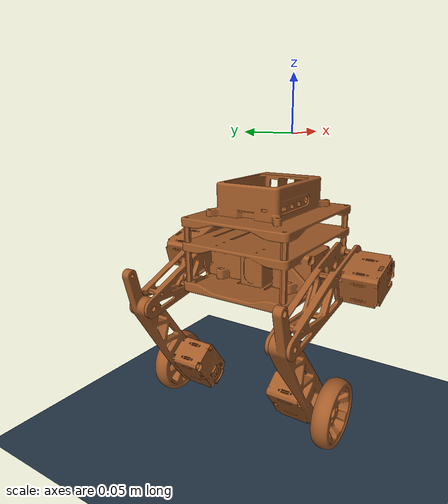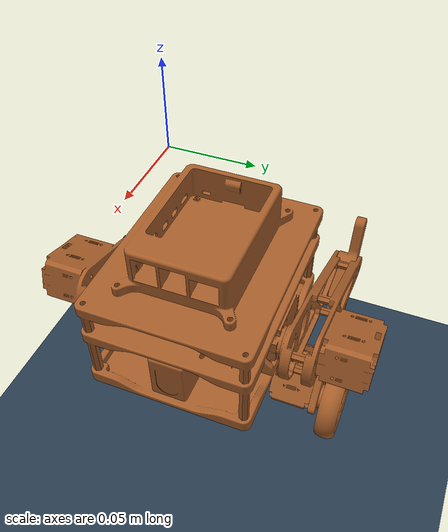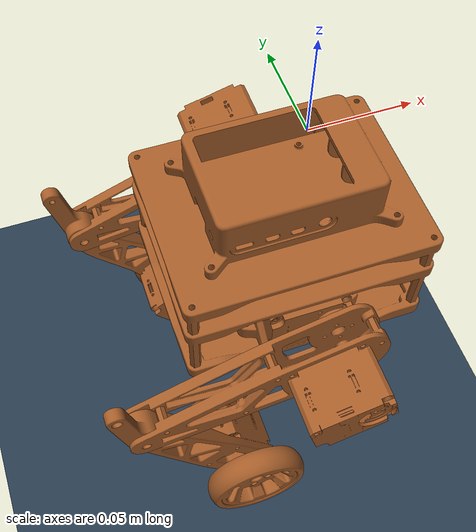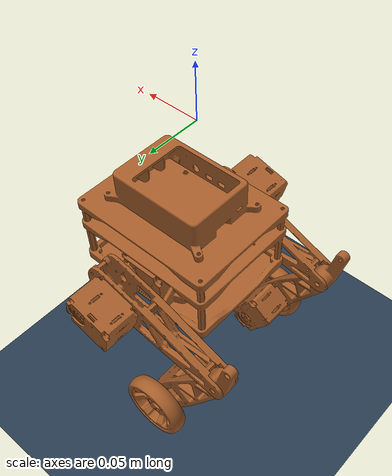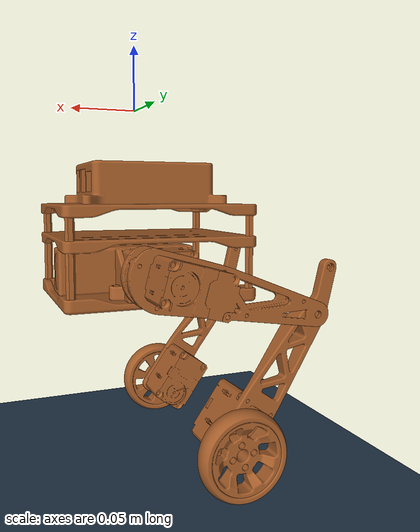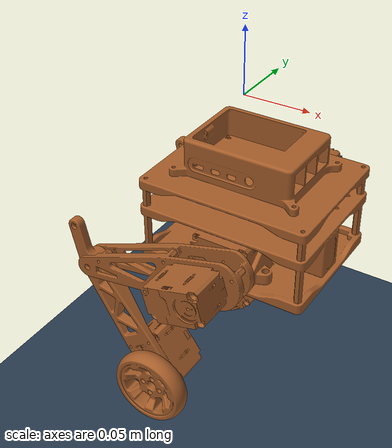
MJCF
<mujoco model="Humanoid">

    <compiler inertiafromgeom="true" angle="degree"/>

    <default>
        <joint limited="true" damping="1" armature="0"/>
        <geom condim="1" material="matgeom"/>
    </default>

    <option timestep="0.005" iterations="50" tolerance="1e-10" solver="Newton" jacobian="dense" cone="pyramidal" gravity="0 0 -9.81"/>

    <size nconmax="50" njmax="200" nstack="10000"/>

    <visual>
        <map force="0.1" zfar="30"/>
        <rgba haze="0.15 0.25 0.35 1"/>
        <quality shadowsize="2048"/>
        <global offwidth="800" offheight="800"/>
    </visual>

    <asset>
        <texture type="skybox" builtin="gradient" rgb1="0.3 0.5 0.7" rgb2="0 0 0" width="512" height="512"/>
        <texture name="texplane" type="2d" builtin="checker" rgb1=".2 .3 .4" rgb2=".1 0.15 0.2" width="512" height="512" mark="cross" markrgb=".8 .8 .8"/>
        <texture name="texgeom" type="cube" builtin="flat" mark="cross" width="127" height="1278" rgb1="0.8 0.6 0.4" rgb2="0.8 0.6 0.4" markrgb="1 1 1" random="0.01"/>
        <material name="matplane" reflectance="0.3" texture="texplane" texrepeat="1 1" texuniform="true"/>
        <material name="matgeom" texture="texgeom" texuniform="true" rgba="0.8 0.6 .4 1"/>
        <mesh name="base_link" file="base_link.stl" scale="0.001 0.001 0.001"/>
        <mesh name="upperleg_right_1" file="upperleg_right_1.stl" scale="0.001 0.001 0.001"/>
        <mesh name="upperleg_left_1" file="upperleg_left_1.stl" scale="0.001 0.001 0.001"/>
        <mesh name="wheel_right_1" file="wheel_right_1.stl" scale="0.001 0.001 0.001"/>
        <mesh name="wheel_left_1" file="wheel_left_1.stl" scale="0.001 0.001 0.001"/>
        <mesh name="lowerleg_right_1" file="lowerleg_right_1.stl" scale="0.001 0.001 0.001"/>
        <mesh name="lowerleg_left_1" file="lowerleg_left_1.stl" scale="0.001 0.001 0.001"/>
    </asset>

    <worldbody>
        <geom name="floor" pos="0 0 -0.285" size="0 0 .25" type="plane" material="matplane" condim="3" contype="1" conaffinity="1"/>
        <light directional="false" diffuse=".2 .2 .2" specular="0 0 0" pos="0 0 5" dir="0 0 -1" castshadow="false"/>
        <light mode="targetbodycom" target="robot" directional="false" diffuse=".8 .8 .8" specular="0.3 0.3 0.3" pos="0 0 4.0" dir="0 0 -1"/>

        <body name="robot" pos="0 0 -0.1">
            <joint type="free"/>
            <body name="base_link" pos="0 0 0">
                <inertial pos="0.00300424 0.0206516 -0.0103763" quat="0.00402797 0.727055 -0.0140978 0.686423" mass="0.453764" diaginertia="0.000951718 0.000826025 0.000742257"/>

                <geom type="mesh" contype="1" conaffinity="1" group="1" mesh="base_link"/>
                <geom type="mesh" mesh="base_link"/>
                <site name="imu_site" pos="0 0 0"/>

                <body name="upperleg_right_1" pos="0.0125 -0.036656 -0.018805" quat="0.793657 0 0.608366 0">
                    <inertial pos="0.000384889 -0.0301356 -0.022778" quat="0.993878 0.109614 0.00866327 -0.0107922" mass="0.0717161" diaginertia="8.80196e-05 7.86773e-05 2.23031e-05"/>
                    <joint name="hip_joint_right" pos="0 0 0" axis="0 -1 0" range="-1 1"/>
                    <geom pos="-0.0125 0.036656 0.018805" type="mesh" contype="1" conaffinity="1" group="1" mesh="upperleg_right_1"/>
                    <geom pos="-0.0125 0.036656 0.018805" type="mesh" mesh="upperleg_right_1"/>
                    <body name="lowerleg_right_1" pos="0 -0.0211 -0.12" quat="0.57393 0 -0.818905 0">
                        <inertial pos="0.000147576 0.0163926 -0.0779098" quat="0.996559 0.073541 0.00782051 -0.0374159" mass="0.0680079" diaginertia="0.000109021 0.000107072 1.09068e-05"/>
                        <joint name="knee_joint_right" pos="0 0 0" axis="0 -1 0" range="-1 1"/>
                        <geom pos="-0.0125 0.057756 0.138805" type="mesh" contype="1" conaffinity="1" group="1" mesh="lowerleg_right_1"/>
                        <geom pos="-0.0125 0.057756 0.138805" type="mesh" mesh="lowerleg_right_1"/>
                        <body name="wheel_right_1" pos="0 0.0037 -0.11">
                            <inertial pos="-1.36492e-10 -0.0138548 1.53838e-07" quat="0.707107 0 0 0.707107" mass="0.01" diaginertia="0.00014 7.5e-05 7.5e-05"/>
                            <joint name="wheel_joint_right" pos="0 0 0" axis="0 -1 0" range="-180 180" type="hinge"/>
                            <geom pos="-0.0125 0.054056 0.248805" type="mesh" contype="1" conaffinity="1" group="1" mesh="wheel_right_1"/>
                            <geom pos="-0.0125 0.054056 0.248805" type="mesh" mesh="wheel_right_1"/>
                        </body>
                    </body>
                </body>
                <body name="upperleg_left_1" pos="0.012 0.077944 -0.018805" quat="0.793657 0 0.608366 0">
                    <inertial pos="0.000398262 0.0301358 -0.022778" quat="0.993878 -0.109614 0.00866327 0.0107922" mass="0.0717161" diaginertia="8.80196e-05 7.86773e-05 2.23031e-05"/>
                    <joint name="hip_joint_left" pos="0 0 0" axis="0 1 0" range="-1 1"/>
                    <geom pos="-0.012 -0.077944 0.018805" type="mesh" contype="1" conaffinity="1" group="1" mesh="upperleg_left_1"/>
                    <geom pos="-0.012 -0.077944 0.018805" type="mesh" mesh="upperleg_left_1"/>
                    <body name="lowerleg_left_1" pos="0 0.0211 -0.12" quat="0.57393 0 -0.818905 0">
                        <inertial pos="0.000161673 -0.0163924 -0.0779099" quat="0.996559 -0.073541 0.00782051 0.0374159" mass="0.0680078" diaginertia="0.000109021 0.000107072 1.09068e-05"/>
                        <joint name="knee_joint_left" pos="0 0 0" axis="0 1 0" range="-1 1"/>
                        <geom pos="-0.012 -0.099044 0.138805" type="mesh" contype="1" conaffinity="1" group="1" mesh="lowerleg_left_1"/>
                        <geom pos="-0.012 -0.099044 0.138805" type="mesh" mesh="lowerleg_left_1"/>
                        <body name="wheel_left_1" pos="0 -0.0037 -0.11">
                            <inertial pos="-1.95094e-09 0.013855 1.52529e-07" quat="0.707107 0 0 0.707107" mass="0.01" diaginertia="0.00014 7.5e-05 7.5e-05"/>
                            <joint name="wheel_joint_left" pos="0 0 0" axis="0 1 0" range="-180 180" type="hinge"/>
                            <geom pos="-0.012 -0.095344 0.248805" type="mesh" contype="1" conaffinity="1" group="1" mesh="wheel_left_1"/>
                            <geom pos="-0.012 -0.095344 0.248805" type="mesh" mesh="wheel_left_1"/>
                        </body>
                    </body>
                </body>
            </body>
        </body>
    </worldbody>

    <actuator>
        <motor name="wheel_right_torque" joint="wheel_joint_right" gear="20" ctrlrange="-1 1" ctrllimited="true"/>
        <motor name="wheel_left_torque" joint="wheel_joint_left" gear="20" ctrlrange="-1 1" ctrllimited="true"/>
        <motor joint="hip_joint_right" ctrlrange="-1 1" ctrllimited="true"/>
        <motor joint="knee_joint_right" ctrlrange="-1 1" ctrllimited="true"/>
        <motor joint="hip_joint_left" ctrlrange="-1 1" ctrllimited="true"/>
        <motor joint="knee_joint_left" ctrlrange="-1 1" ctrllimited="true"/>
    </actuator>

    <sensor>
        <!-- Add these sensors for the IMU -->
        <gyro name="imu_gyro" site="imu_site"/>
        <accelerometer name="imu_accel" site="imu_site"/>
        <framepos name="sensor_global" objtype="body" objname="base_link"/>
    </sensor>
</mujoco>
